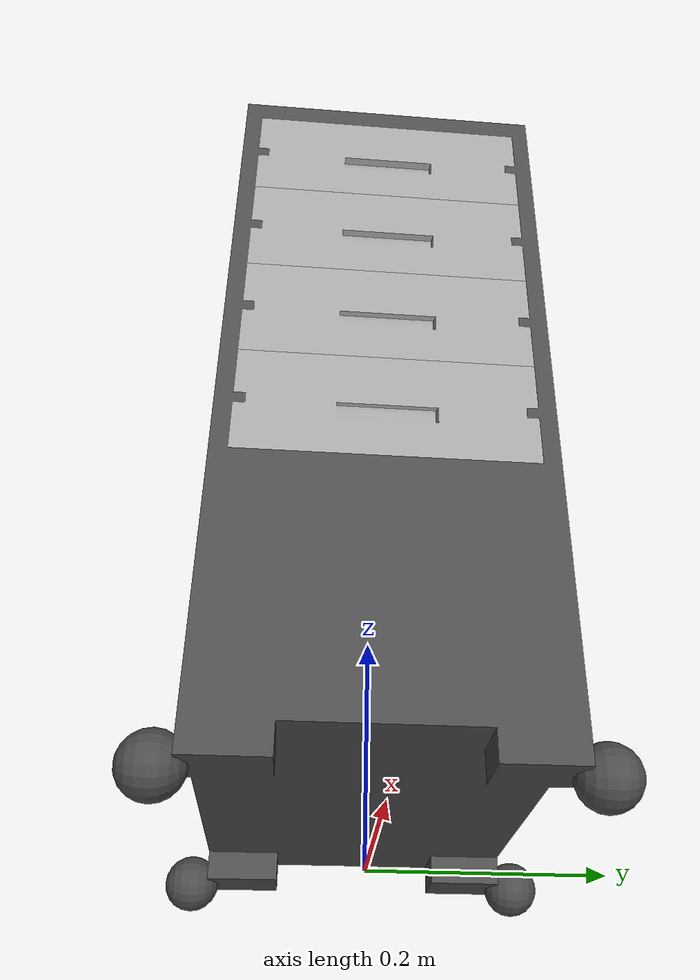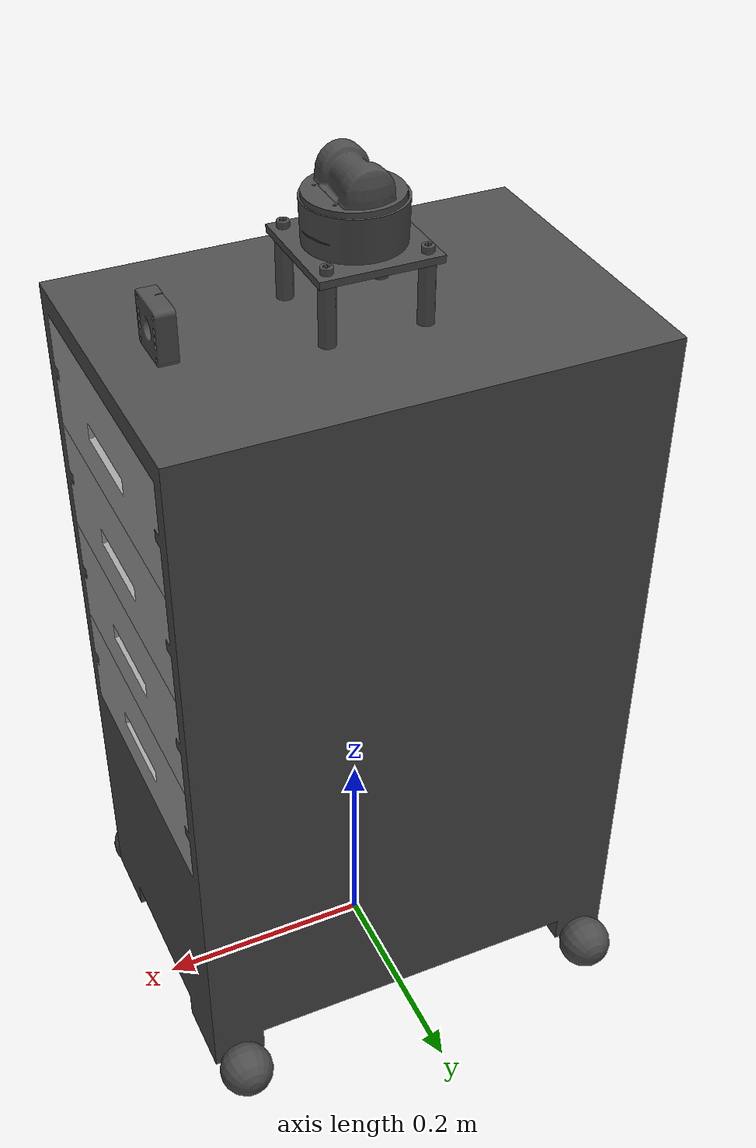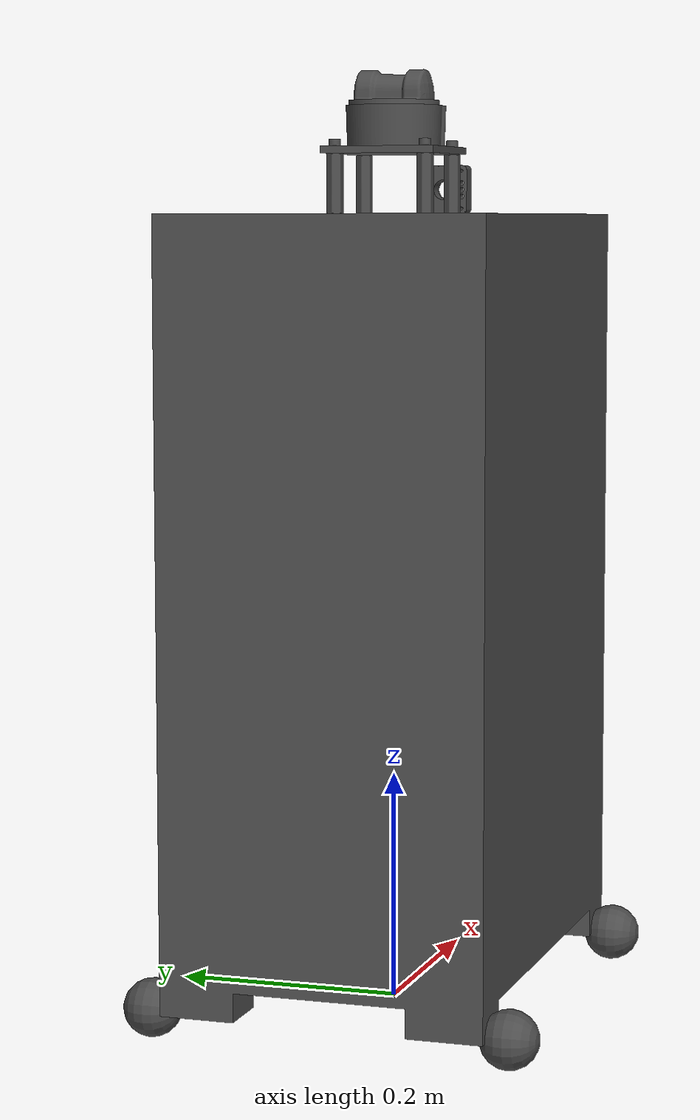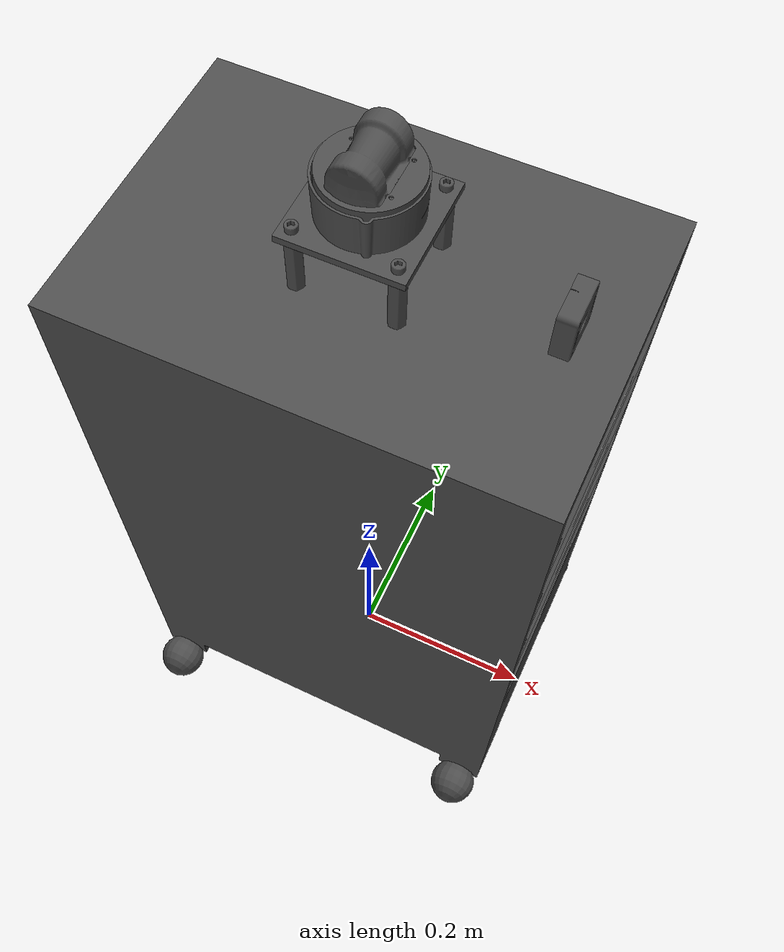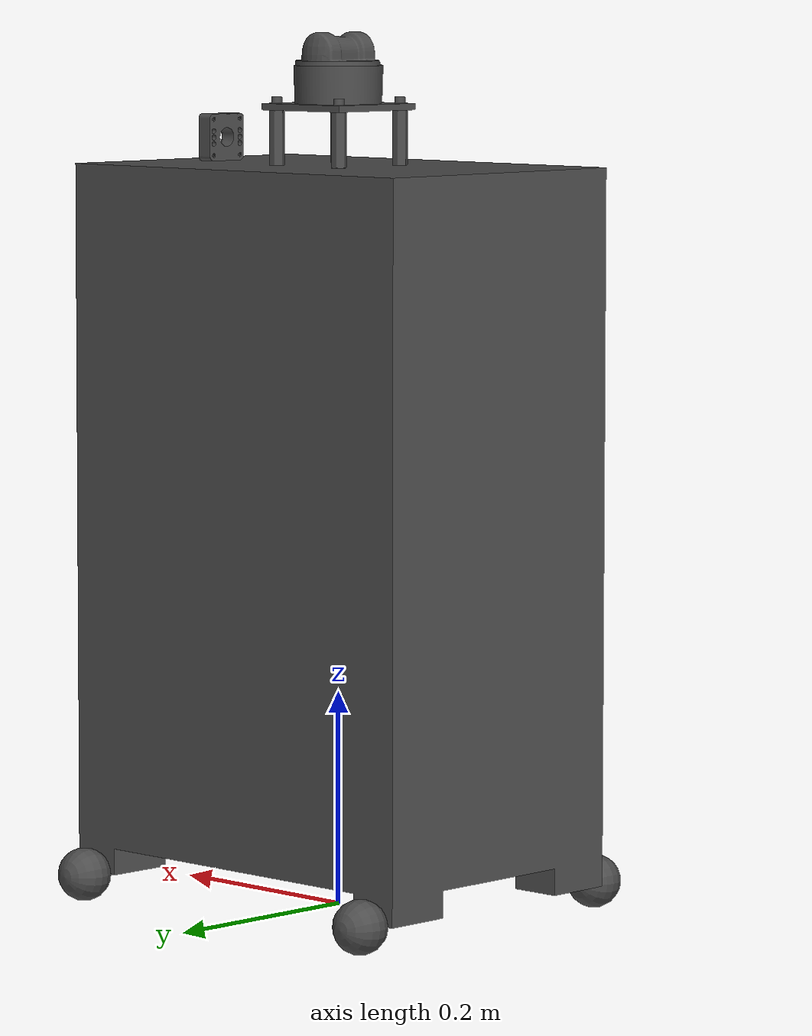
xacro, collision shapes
<?xml version="1.0"?>
<robot xmlns:xacro="http://www.ros.org/wiki/xacro"
       xmlns:ignition="http://gazebosim.org/schema"
       name="office_bot">
    <xacro:arg name="mesh_uri_prefix" default="package://office_bot_model/models/officebot/" />
    <xacro:arg name="controller_config_path" default="$(find-pkg-share office_bot_model)/controllers/officebotcontroller.yaml" />

    <xacro:property name="mesh_uri_prefix" value="$(arg mesh_uri_prefix)" />
    <xacro:property name="controller_config_path" value="$(arg controller_config_path)" />

    <xacro:include filename="base.xacro" />
    <xacro:include filename="drawers.xacro" />
    <xacro:include filename="wheels.xacro" />
    <xacro:include filename="sensors.xacro" />
    <xacro:include filename="control.xacro" />

    <xacro:officebot_base mesh_uri_prefix="${mesh_uri_prefix}" />
    <xacro:officebot_drawers mesh_uri_prefix="${mesh_uri_prefix}" />
    <xacro:officebot_wheels mesh_uri_prefix="${mesh_uri_prefix}" />
    <xacro:officebot_sensors />
    <xacro:officebot_control controller_config_path="${controller_config_path}" />
</robot>

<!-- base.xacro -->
<robot xmlns:xacro="http://www.ros.org/wiki/xacro" name="officebot_base">
    <xacro:macro name="officebot_base" params="mesh_uri_prefix">
        <link name="base_footprint"></link>
        <joint name="dummy_root" type="fixed">
            <parent link="base_footprint"></parent>
            <child link="base"></child>
            <origin xyz="0 0 0.05" rpy="0 0 1.57"></origin>
        </joint>
        <link name="base">
            <visual>
                <origin xyz="2.1538861131079210576e-05 5.2264522704986715596e-05 0.69700000000000006395" rpy="-1.276289952752453768e-16 -0 0"></origin>
                <geometry>
                    <mesh filename="${mesh_uri_prefix}lidar_cap_bottom.stl"></mesh>
                </geometry>
                <material name="lidar_cap_bottom_material">
                    <color rgba="0.29803921568627450567 0.29803921568627450567 0.29803921568627450567 1.0"></color>
                </material>
            </visual>
            <collision>
                <origin xyz="2.1538861131079210576e-05 5.2264522704986715596e-05 0.69700000000000006395" rpy="-1.276289952752453768e-16 -0 0"></origin>
                <geometry>
                    <mesh filename="${mesh_uri_prefix}lidar_cap_bottom.stl"></mesh>
                </geometry>
            </collision>
            <visual>
                <origin xyz="-0.039978461138868923164 -0.039947735477295027995 0.67500000000000004441" rpy="3.141592653589793116 -0 0"></origin>
                <geometry>
                    <mesh filename="${mesh_uri_prefix}91292a073_18_8_stainless_steel_socket_head_screw.stl"></mesh>
                </geometry>
                <material name="91292a073_18-8_stainless_steel_socket_head_screw_material">
                    <color rgba="0.64705882352941179736 0.64705882352941179736 0.64705882352941179736 1.0"></color>
                </material>
            </visual>
            <collision>
                <origin xyz="-0.039978461138868923164 -0.039947735477295027995 0.67500000000000004441" rpy="3.141592653589793116 -0 0"></origin>
                <geometry>
                    <mesh filename="${mesh_uri_prefix}91292a073_18_8_stainless_steel_socket_head_screw.stl"></mesh>
                </geometry>
            </collision>
            <visual>
                <origin xyz="-0.039978461138868916225 0.04005226452270497367 0.67500000000000004441" rpy="3.141592653589793116 -0 0"></origin>
                <geometry>
                    <mesh filename="${mesh_uri_prefix}91292a073_18_8_stainless_steel_socket_head_screw.stl"></mesh>
                </geometry>
                <material name="91292a073_18-8_stainless_steel_socket_head_screw_material">
                    <color rgba="0.64705882352941179736 0.64705882352941179736 0.64705882352941179736 1.0"></color>
                </material>
            </visual>
            <collision>
                <origin xyz="-0.039978461138868916225 0.04005226452270497367 0.67500000000000004441" rpy="3.141592653589793116 -0 0"></origin>
                <geometry>
                    <mesh filename="${mesh_uri_prefix}91292a073_18_8_stainless_steel_socket_head_screw.stl"></mesh>
                </geometry>
            </collision>
            <visual>
                <origin xyz="0.039999999999999980016 -0.039999999999999986955 0.64000000000000001332" rpy="-1.570796326794896558 -0 0"></origin>
                <geometry>
                    <mesh filename="${mesh_uri_prefix}93655a262_male_female_threaded_hex_standoff.stl"></mesh>
                </geometry>
                <material name="93655a262_male-female_threaded_hex_standoff_material">
                    <color rgba="0.2313725490196078538 0.38039215686274507888 0.7058823529411765163 1.0"></color>
                </material>
            </visual>
            <collision>
                <origin xyz="0.039999999999999980016 -0.039999999999999986955 0.64000000000000001332" rpy="-1.570796326794896558 -0 0"></origin>
                <geometry>
                    <mesh filename="${mesh_uri_prefix}93655a262_male_female_threaded_hex_standoff.stl"></mesh>
                </geometry>
            </collision>
            <visual>
                <origin xyz="0.088000000000000008771 -0.16320000000000001172 0.66200000000000003286" rpy="3.141592653589793116 1.5770213417971000254e-16 0"></origin>
                <geometry>
                    <mesh filename="${mesh_uri_prefix}camera.stl"></mesh>
                </geometry>
                <material name="camera_material">
                    <color rgba="0.91764705882352937127 0.91764705882352937127 0.91764705882352937127 1.0"></color>
                </material>
            </visual>
            <collision>
                <origin xyz="0.088000000000000008771 -0.16320000000000001172 0.66200000000000003286" rpy="3.141592653589793116 1.5770213417971000254e-16 0"></origin>
                <geometry>
                    <mesh filename="${mesh_uri_prefix}camera.stl"></mesh>
                </geometry>
            </collision>
            <visual>
                <origin xyz="2.1538861131077668976e-05 0.0011480437628363371338 0.69100000000000005862" rpy="-1.276289952752453768e-16 -0 0"></origin>
                <geometry>
                    <mesh filename="${mesh_uri_prefix}plate.stl"></mesh>
                </geometry>
                <material name="plate_material">
                    <color rgba="0.61568627450980395466 0.81176470588235294379 0.92941176470588238168 1.0"></color>
                </material>
            </visual>
            <collision>
                <origin xyz="2.1538861131077668976e-05 0.0011480437628363371338 0.69100000000000005862" rpy="-1.276289952752453768e-16 -0 0"></origin>
                <geometry>
                    <mesh filename="${mesh_uri_prefix}plate.stl"></mesh>
                </geometry>
            </collision>
            <visual>
                <origin xyz="-0.039999999999999993894 -0.039999999999999973077 0.64000000000000001332" rpy="-1.570796326794896558 -0 0"></origin>
                <geometry>
                    <mesh filename="${mesh_uri_prefix}93655a262_male_female_threaded_hex_standoff.stl"></mesh>
                </geometry>
                <material name="93655a262_male-female_threaded_hex_standoff_material">
                    <color rgba="0.2313725490196078538 0.38039215686274507888 0.7058823529411765163 1.0"></color>
                </material>
            </visual>
            <collision>
                <origin xyz="-0.039999999999999993894 -0.039999999999999973077 0.64000000000000001332" rpy="-1.570796326794896558 -0 0"></origin>
                <geometry>
                    <mesh filename="${mesh_uri_prefix}93655a262_male_female_threaded_hex_standoff.stl"></mesh>
                </geometry>
            </collision>
            <visual>
                <origin xyz="0 0 0" rpy="0 -0 0"></origin>
                <geometry>
                    <mesh filename="${mesh_uri_prefix}base.stl"></mesh>
                </geometry>
                <material name="base_material">
                    <color rgba="0.61568627450980395466 0.81176470588235294379 0.92941176470588238168 1.0"></color>
                </material>
            </visual>
            <collision>
                <origin xyz="0 0 0" rpy="0 -0 0"></origin>
                <geometry>
                    <mesh filename="${mesh_uri_prefix}base.stl"></mesh>
                </geometry>
            </collision>
            <visual>
                <origin xyz="0.00027231756027094530803 -0.00075989928100567150082 0.73028953015198128096" rpy="0 -0 -1.570796326794896558"></origin>
                <geometry>
                    <mesh filename="${mesh_uri_prefix}lidar_rain_top.stl"></mesh>
                </geometry>
                <material name="lidar_rain_top_material">
                    <color rgba="0.29803921568627450567 0.29803921568627450567 0.29803921568627450567 1.0"></color>
                </material>
            </visual>
            <collision>
                <origin xyz="0.00027231756027094530803 -0.00075989928100567150082 0.73028953015198128096" rpy="0 -0 -1.570796326794896558"></origin>
                <geometry>
                    <mesh filename="${mesh_uri_prefix}lidar_rain_top.stl"></mesh>
                </geometry>
            </collision>
            <visual>
                <origin xyz="0.040021538314784332879 -0.039947736771962089053 0.67500000000000004441" rpy="-3.141592653589793116 -0 0"></origin>
                <geometry>
                    <mesh filename="${mesh_uri_prefix}91292a073_18_8_stainless_steel_socket_head_screw.stl"></mesh>
                </geometry>
                <material name="91292a073_18-8_stainless_steel_socket_head_screw_material">
                    <color rgba="0.64705882352941179736 0.64705882352941179736 0.64705882352941179736 1.0"></color>
                </material>
            </visual>
            <collision>
                <origin xyz="0.040021538314784332879 -0.039947736771962089053 0.67500000000000004441" rpy="-3.141592653589793116 -0 0"></origin>
                <geometry>
                    <mesh filename="${mesh_uri_prefix}91292a073_18_8_stainless_steel_socket_head_screw.stl"></mesh>
                </geometry>
            </collision>
            <visual>
                <origin xyz="-0.0076784611388689208433 -0.014607735477295019644 0.70535953015098928898" rpy="0 -0 0"></origin>
                <geometry>
                    <mesh filename="${mesh_uri_prefix}lidar.stl"></mesh>
                </geometry>
                <material name="lidar_material">
                    <color rgba="0.76862745098039220171 0.88627450980392152857 0.95294117647058818044 1.0"></color>
                </material>
            </visual>
            <collision>
                <origin xyz="-0.0076784611388689208433 -0.014607735477295019644 0.70535953015098928898" rpy="0 -0 0"></origin>
                <geometry>
                    <mesh filename="${mesh_uri_prefix}lidar.stl"></mesh>
                </geometry>
            </collision>
            <visual>
                <origin xyz="0.040021538314784353696 0.040052263228037905674 0.67500000000000004441" rpy="-3.141592653589793116 -0 0"></origin>
                <geometry>
                    <mesh filename="${mesh_uri_prefix}91292a073_18_8_stainless_steel_socket_head_screw.stl"></mesh>
                </geometry>
                <material name="91292a073_18-8_stainless_steel_socket_head_screw_material">
                    <color rgba="0.64705882352941179736 0.64705882352941179736 0.64705882352941179736 1.0"></color>
                </material>
            </visual>
            <collision>
                <origin xyz="0.040021538314784353696 0.040052263228037905674 0.67500000000000004441" rpy="-3.141592653589793116 -0 0"></origin>
                <geometry>
                    <mesh filename="${mesh_uri_prefix}91292a073_18_8_stainless_steel_socket_head_screw.stl"></mesh>
                </geometry>
            </collision>
            <visual>
                <origin xyz="-0.039978461138868916225 0.040052264522704966732 0.64000000000000001332" rpy="-1.570796326794896558 -0 3.141592653589793116"></origin>
                <geometry>
                    <mesh filename="${mesh_uri_prefix}93655a262_male_female_threaded_hex_standoff.stl"></mesh>
                </geometry>
                <material name="93655a262_male-female_threaded_hex_standoff_material">
                    <color rgba="0.2313725490196078538 0.38039215686274507888 0.7058823529411765163 1.0"></color>
                </material>
            </visual>
            <collision>
                <origin xyz="-0.039978461138868916225 0.040052264522704966732 0.64000000000000001332" rpy="-1.570796326794896558 -0 3.141592653589793116"></origin>
                <geometry>
                    <mesh filename="${mesh_uri_prefix}93655a262_male_female_threaded_hex_standoff.stl"></mesh>
                </geometry>
            </collision>
            <visual>
                <origin xyz="0.040000000000000000833 0.040000000000000007772 0.64000000000000001332" rpy="-1.570796326794896558 -0 0"></origin>
                <geometry>
                    <mesh filename="${mesh_uri_prefix}93655a262_male_female_threaded_hex_standoff.stl"></mesh>
                </geometry>
                <material name="93655a262_male-female_threaded_hex_standoff_material">
                    <color rgba="0.2313725490196078538 0.38039215686274507888 0.7058823529411765163 1.0"></color>
                </material>
            </visual>
            <collision>
                <origin xyz="0.040000000000000000833 0.040000000000000007772 0.64000000000000001332" rpy="-1.570796326794896558 -0 0"></origin>
                <geometry>
                    <mesh filename="${mesh_uri_prefix}93655a262_male_female_threaded_hex_standoff.stl"></mesh>
                </geometry>
            </collision>
            <inertial>
                <origin xyz="-1.0480396050031999557e-05 0.0057636639617425411072 0.20546884607802526346" rpy="0 0 0"></origin>
                <mass value="15.49143394549887276"></mass>
                <inertia ixx="0.77734852159115797043" ixy="-1.8115077120170765664e-06" ixz="3.0848972619884601877e-05" iyy="0.67459748065292401975" iyz="-0.01915723532918278682" izz="0.35489977220502227917"></inertia>
            </inertial>
        </link>
        <gazebo reference="base_footprint">
            <sensor name="imu_sensor" type="imu">
                <always_on>1</always_on>
                <update_rate>1</update_rate>
                <visualize>true</visualize>
                <topic>imu</topic>
            </sensor>
        </gazebo>
    </xacro:macro>
</robot>

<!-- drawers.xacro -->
<robot xmlns:xacro="http://www.ros.org/wiki/xacro" name="officebot_drawers">
    <xacro:macro name="officebot_drawer" params="link_name joint_name z_offset visual_x:=0.015004444442000011706">
        <link name="${link_name}">
            <visual>
                <origin xyz="${visual_x} 1.0500000000000000444 -0.20100000000000001199" rpy="1.570796326794896558 0 0" />
                <geometry>
                    <mesh filename="${mesh_uri_prefix}drawer.stl" />
                </geometry>
                <material name="drawer_material">
                    <color rgba="0.64705882352941179736 0.64705882352941179736 0.64705882352941179736 1.0" />
                </material>
            </visual>
            <collision>
                <origin xyz="${visual_x} 1.0500000000000000444 -0.20100000000000001199" rpy="1.570796326794896558 0 0" />
                <geometry>
                    <mesh filename="${mesh_uri_prefix}drawer.stl" />
                </geometry>
            </collision>
            <inertial>
                <origin xyz="0.11500444463622183644 0.017863356300829913437 -0.20135771129566992776" rpy="0 0 0" />
                <mass value="1.3157567401165588539" />
                <inertia ixx="0.025117376745737180627" ixy="4.6518674608217020318e-12" ixz="-2.9189657039480768947e-11" iyy="0.033720984998443788438" iyz="-2.441660906402222698e-05" izz="0.011129479641923002015" />
            </inertial>
        </link>
        <joint name="${joint_name}" type="fixed">
            <origin xyz="0.11500980138576723244 -0.20500000000000001554 ${z_offset}" rpy="-1.570796326794896558 0 3.141592653589793116" />
            <parent link="base" />
            <child link="${link_name}" />
        </joint>
    </xacro:macro>

    <xacro:macro name="officebot_drawers" params="mesh_uri_prefix">
        <xacro:officebot_drawer link_name="drawer_1" joint_name="base_drawer1" z_offset="0.56999968326568606347" />
        <xacro:officebot_drawer link_name="drawer_2" joint_name="base_drawer2" z_offset="0.46999968326568986043" visual_x="0.015004444442000025584" />
        <xacro:officebot_drawer link_name="drawer_3" joint_name="base_drawer3" z_offset="0.36999968326568610788" />
        <xacro:officebot_drawer link_name="drawer_4" joint_name="base_drawer4" z_offset="0.26999968326568613008" />
    </xacro:macro>
</robot>

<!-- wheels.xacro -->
<robot xmlns:ignition="http://gazebosim.org/schema" xmlns:xacro="http://www.ros.org/wiki/xacro" name="officebot_wheels">
    <xacro:macro name="officebot_wheels" params="mesh_uri_prefix">
        <link name="wheel_fr">
            <visual>
                <origin xyz="-1.2068141624910211362e-11 -1.7179378986043047917e-07 -0.015750853796563685227" rpy="1.570796326794896558 1.570796326794896558 0"></origin>
                <geometry>
                    <mesh filename="${mesh_uri_prefix}wheel.stl"></mesh>
                </geometry>
                <material name="wheel_material">
                    <color rgba="0.29803921568627450567 0.29803921568627450567 0.29803921568627450567 1.0"></color>
                </material>
            </visual>
            <collision>
                <origin xyz="-1.2068141624910211362e-11 -1.7179378986043047917e-07 -0.015750853796563685227" rpy="0 0 0"></origin>
                <geometry>
                    <sphere radius="0.025"></sphere>
                </geometry>
            </collision>
            <inertial>
                <origin xyz="-0.00012384960631777524264 1.7288366529908357882e-08 -0.014664740164935676989" rpy="0 0 0"></origin>
                <mass value="0.021505374555847410478"></mass>
                <inertia ixx="4.5670776315593607919e-06" ixy="4.6693190007475188061e-12" ixz="-2.8901187565512819888e-09" iyy="4.6149952980252317969e-06" iyz="-3.7205436020749213202e-09" izz="6.8500077196540731277e-06"></inertia>
            </inertial>
        </link>
        <joint name="base_wheel_fr" type="continuous">
            <origin xyz="-0.14000000000000001332 -0.18080000000000001625 -0.025000000000000011796" rpy="6.7696525891777836328e-17 1.570796326794896558 0"></origin>
            <parent link="base"></parent>
            <child link="wheel_fr"></child>
            <axis xyz="0 0 1"></axis>
            <dynamics damping="0.2"></dynamics>
        </joint>
        <link name="wheel_rr">
            <visual>
                <origin xyz="-9.995476668578362478e-15 -1.7179980940640326992e-07 -0.015750853796563685227" rpy="1.570796326794896558 1.570796326794896558 0"></origin>
                <geometry>
                    <mesh filename="${mesh_uri_prefix}wheel.stl"></mesh>
                </geometry>
                <material name="wheel_material">
                    <color rgba="0.29803921568627450567 0.29803921568627450567 0.29803921568627450567 1.0"></color>
                </material>
            </visual>
            <collision>
                <origin xyz="-9.995476668578362478e-15 -1.7179980940640326992e-07 -0.015750853796563685227" rpy="0 0 0"></origin>
                <geometry>
                    <sphere radius="0.025"></sphere>
                </geometry>
            </collision>
            <inertial>
                <origin xyz="-0.0001238495942596290944 1.728234698393556713e-08 -0.014664740164935676989" rpy="0 0 0"></origin>
                <mass value="0.021505374555847410478"></mass>
                <inertia ixx="4.5670776315593607919e-06" ixy="4.6693190007475188061e-12" ixz="-2.8901187565512819888e-09" iyy="4.6149952980252317969e-06" iyz="-3.7205436020749213202e-09" izz="6.8500077196540731277e-06"></inertia>
            </inertial>
        </link>
        <joint name="base_wheel_rr" type="continuous">
            <origin xyz="-0.14000000000000001332 0.18080000000000001625 -0.025000000000000018735" rpy="3.141592653589793116 -1.570796326794896558 0"></origin>
            <parent link="base"></parent>
            <child link="wheel_rr"></child>
            <axis xyz="0 0 1"></axis>
            <dynamics damping="0.2"></dynamics>
        </joint>
        <link name="wheel_fl">
            <visual>
                <origin xyz="-1.2068152033251067223e-11 -1.7179378985002213831e-07 -0.015750853796563685227" rpy="1.570796326794896558 1.570796326794896558 0"></origin>
                <geometry>
                    <mesh filename="${mesh_uri_prefix}wheel.stl"></mesh>
                </geometry>
                <material name="wheel_material">
                    <color rgba="0.29803921568627450567 0.29803921568627450567 0.29803921568627450567 1.0"></color>
                </material>
            </visual>
            <collision>
                <origin xyz="-1.2068152033251067223e-11 -1.7179378985002213831e-07 -0.015750853796563685227" rpy="0 0 0"></origin>
                <geometry>
                    <sphere radius="0.025"></sphere>
                </geometry>
            </collision>
            <inertial>
                <origin xyz="-0.00012384960631778565098 1.7288366540316698738e-08 -0.014664740164935676989" rpy="0 0 0"></origin>
                <mass value="0.021505374555847410478"></mass>
                <inertia ixx="4.5670776315593607919e-06" ixy="4.6693190007475188061e-12" ixz="-2.8901187565512819888e-09" iyy="4.6149952980252317969e-06" iyz="-3.7205436020749213202e-09" izz="6.8500077196540731277e-06"></inertia>
            </inertial>
        </link>
        <joint name="base_wheel_fl" type="continuous">
            <origin xyz="0.14000000000000001332 -0.18080000000000001625 -0.025000000000000001388" rpy="-1.570796326794896558 -0 1.570796326794896558"></origin>
            <parent link="base"></parent>
            <child link="wheel_fl"></child>
            <axis xyz="0 0 -1"></axis>
            <dynamics damping="0.2"></dynamics>
        </joint>
        <link name="wheel_rl">
            <visual>
                <origin xyz="-1.2068152033251067223e-11 -1.7179378985002213831e-07 -0.015750853796563685227" rpy="1.570796326794896558 1.570796326794896558 0"></origin>
                <geometry>
                    <mesh filename="${mesh_uri_prefix}wheel.stl"></mesh>
                </geometry>
                <material name="wheel_material">
                    <color rgba="0.29803921568627450567 0.29803921568627450567 0.29803921568627450567 1.0"></color>
                </material>
            </visual>
            <collision>
                <origin xyz="-1.2068152033251067223e-11 -1.7179378985002213831e-07 -0.015750853796563685227" rpy="0 0 0"></origin>
                <geometry>
                    <sphere radius="0.025"></sphere>
                </geometry>
            </collision>
            <inertial>
                <origin xyz="-0.00012384960631778565098 1.7288366540316698738e-08 -0.014664740164935676989" rpy="0 0 0"></origin>
                <mass value="0.021505374555847410478"></mass>
                <inertia ixx="4.5670776315593607919e-06" ixy="4.6693190007475188061e-12" ixz="-2.8901187565512819888e-09" iyy="4.6149952980252317969e-06" iyz="-3.7205436020749213202e-09" izz="6.8500077196540731277e-06"></inertia>
            </inertial>
        </link>
        <joint name="base_wheel_rl" type="continuous">
            <origin xyz="0.13999999999999998557 0.1807999999999999885 -0.025000000000000001388" rpy="-1.570796326794896558 -0 1.570796326794896558"></origin>
            <parent link="base"></parent>
            <child link="wheel_rl"></child>
            <axis xyz="0 0 -1"></axis>
            <dynamics damping="0.2"></dynamics>
        </joint>
        <gazebo reference="wheel_fl">
            <collision>
                <surface>
                    <friction>
                        <ode>
                            <mu>2.0</mu>
                            <mu2>0.0</mu2>
                            <fdir1 ignition:expressed_in="base_footprint">1 -1 0</fdir1>
                        </ode>
                    </friction>
                </surface>
            </collision>
        </gazebo>
        <gazebo reference="wheel_fr">
            <collision>
                <surface>
                    <friction>
                        <ode>
                            <mu>2.0</mu>
                            <mu2>0.0</mu2>
                            <fdir1 ignition:expressed_in="base_footprint">1 1 0</fdir1>
                        </ode>
                    </friction>
                </surface>
            </collision>
        </gazebo>
        <gazebo reference="wheel_rl">
            <collision>
                <surface>
                    <friction>
                        <ode>
                            <mu>2.0</mu>
                            <mu2>0.0</mu2>
                            <fdir1 ignition:expressed_in="base_footprint">1 1 0</fdir1>
                        </ode>
                    </friction>
                </surface>
            </collision>
        </gazebo>
        <gazebo reference="wheel_rr">
            <collision>
                <surface>
                    <friction>
                        <ode>
                            <mu>2.0</mu>
                            <mu2>0.0</mu2>
                            <fdir1 ignition:expressed_in="base_footprint">1 -1 0</fdir1>
                        </ode>
                    </friction>
                </surface>
            </collision>
        </gazebo>
    </xacro:macro>
</robot>

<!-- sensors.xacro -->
<robot xmlns:xacro="http://www.ros.org/wiki/xacro" name="officebot_sensors">
    <xacro:macro name="officebot_sensors" params="">
        <link name="lidar_link"></link>
        <joint name="base_lidar" type="fixed">
            <origin xyz="-0.0076784611388689208433 -0.014607735477295019644 0.70535953015098928898" rpy="0 0 0"></origin>
            <parent link="base"></parent>
            <child link="lidar_link"></child>
            <axis xyz="0 0 1"></axis>
        </joint>
        <link name="camera_link"></link>
        <joint name="camera_joint" type="fixed">
            <origin xyz="0.088000000000000008771 -0.16320000000000001172 0.66200000000000003286" rpy="3.141592653589793116 0 0"></origin>
            <parent link="base"></parent>
            <child link="camera_link"></child>
            <axis xyz="0 0 1"></axis>
        </joint>
        <link name="camera_sensor_link"></link>
        <joint name="camera_sensor_joint" type="fixed">
            <origin xyz="0 0 0" rpy="3.14 0 1.57"></origin>
            <parent link="camera_link"></parent>
            <child link="camera_sensor_link"></child>
        </joint>
        <link name="camera_link_optical"></link>
        <joint name="camera_optical_joint" type="fixed">
            <origin xyz="0 0 0" rpy="-1.5707963267948966 0 -1.5707963267948966"></origin>
            <parent link="camera_sensor_link"></parent>
            <child link="camera_link_optical"></child>
        </joint>
        <gazebo reference="camera_sensor_link">
            <sensor name="camera" type="camera">
                <always_on>true</always_on>
                <visualize>true</visualize>
                <update_rate>30</update_rate>
                <topic>camera/image_raw</topic>
                <gz_frame_id>camera_link_optical</gz_frame_id>
                <camera name="intel_realsense_r200">
                    <horizontal_fov>1.04</horizontal_fov>
                    <image>
                        <width>3840</width>
                        <height>2160</height>
                        <format>R8G8B8</format>
                    </image>
                    <clip>
                        <near>0.02</near>
                        <far>300</far>
                    </clip>
                    <intrinsics>
                        <fx>613.52214502</fx>
                        <fy>563.13948541</fy>
                        <cx>283.04846119</cx>
                        <cy>260.43066317</cy>
                    </intrinsics>
                    <distortion>
                        <k1>-0.467652511</k1>
                        <k2>7.24487497</k2>
                        <p1>0.00873816137</p1>
                        <p2>0.0603649760</p2>
                        <k3>-54.7462075</k3>
                    </distortion>
                    <noise>
                        <type>gaussian</type>
                        <mean>0.0</mean>
                        <stddev>0.007</stddev>
                    </noise>
                </camera>
            </sensor>
        </gazebo>
        <gazebo reference="lidar_link">
            <sensor name="unitree_l2_lidar" type="gpu_lidar">
                <pose relative_to="lidar_link">0 0 0 0 0 0</pose>
                <topic>lidar</topic>
                <ignition_frame_id>lidar_link</ignition_frame_id>
                <update_rate>10</update_rate>
                <ray>
                    <scan>
                        <horizontal>
                            <samples>2000</samples>
                            <resolution>1</resolution>
                            <min_angle>-3.14159265359</min_angle>
                            <max_angle>3.14159265359</max_angle>
                        </horizontal>
                        <vertical>
                            <samples>32</samples>
                            <resolution>1</resolution>
                            <min_angle>-0.261799</min_angle>
                            <max_angle>0.261799</max_angle>
                        </vertical>
                    </scan>
                    <range>
                        <min>0.1</min>
                        <max>40.0</max>
                        <resolution>0.01</resolution>
                    </range>
                </ray>
                <always_on>1</always_on>
                <visualize>true</visualize>
            </sensor>
        </gazebo>
    </xacro:macro>
</robot>
